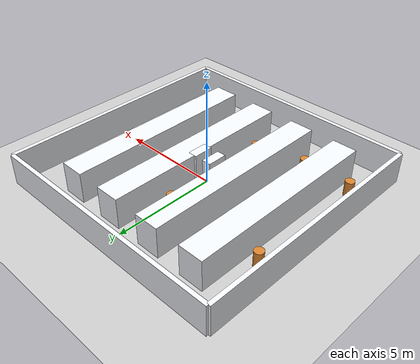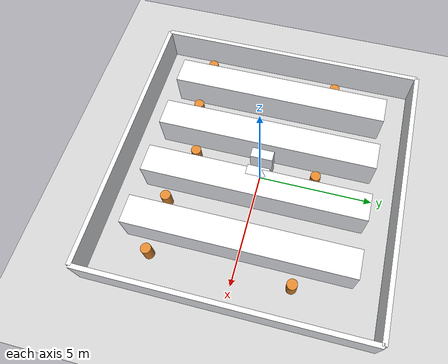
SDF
<?xml version="1.0" ?>
<sdf version="1.6">
<world name="warehouse_aisles">
  <!-- Gazebo ROS State Plugin - provides /set_entity_state service -->
  <plugin name='gazebo_ros_state' filename='libgazebo_ros_state.so'>
    <ros>
      <argument>model_states:=model_states_demo</argument>
    </ros>
    <update_rate>1.0</update_rate>
  </plugin>

  <include>
    <uri>model://ground_plane</uri>
  </include>
  <light name="studio_sun" type="directional">
    <cast_shadows>1</cast_shadows>
    <pose>0 0 18 0 -0.35 0.2</pose>
    <diffuse>0.96 0.94 0.90 1</diffuse>
    <specular>0.16 0.16 0.16 1</specular>
    <attenuation>
      <range>1000</range>
      <constant>0.82</constant>
      <linear>0.006</linear>
      <quadratic>0.0008</quadratic>
    </attenuation>
    <direction>-0.35 0.18 -0.92</direction>
  </light>
  <light name="fill_light" type="point">
    <pose>0 0 8 0 0 0</pose>
    <diffuse>0.40 0.45 0.50 1</diffuse>
    <specular>0.03 0.03 0.03 1</specular>
    <attenuation>
      <range>28</range>
      <constant>0.72</constant>
      <linear>0.02</linear>
      <quadratic>0.001</quadratic>
    </attenuation>
  </light>
  <scene>
    <ambient>0.56 0.58 0.62 1</ambient>
    <background>0.90 0.93 0.98 1</background>
    <shadows>1</shadows>
  </scene>

  <model name="b_north">
    <static>true</static>
    <pose>0 6.0 0.75 0 0 0</pose>
    <link name="link">
      <collision name="collision">
        <geometry>
          <box><size>12.0 0.2 1.5</size></box>
        </geometry>
      </collision>
      <visual name="visual">
        <geometry>
          <box><size>12.0 0.2 1.5</size></box>
        </geometry>
        <cast_shadows>true</cast_shadows>
        <material>
          <ambient>0.88 0.90 0.94 1</ambient>
          <diffuse>0.96 0.97 0.99 1</diffuse>
          <specular>0.08 0.08 0.09 1</specular>
          <emissive>0 0 0 1</emissive>
        </material>
      </visual>
    </link>
  </model>

  <model name="b_south">
    <static>true</static>
    <pose>0 -6.0 0.75 0 0 0</pose>
    <link name="link">
      <collision name="collision">
        <geometry>
          <box><size>12.0 0.2 1.5</size></box>
        </geometry>
      </collision>
      <visual name="visual">
        <geometry>
          <box><size>12.0 0.2 1.5</size></box>
        </geometry>
        <cast_shadows>true</cast_shadows>
        <material>
          <ambient>0.88 0.90 0.94 1</ambient>
          <diffuse>0.96 0.97 0.99 1</diffuse>
          <specular>0.08 0.08 0.09 1</specular>
          <emissive>0 0 0 1</emissive>
        </material>
      </visual>
    </link>
  </model>

  <model name="b_east">
    <static>true</static>
    <pose>6.0 0 0.75 0 0 0</pose>
    <link name="link">
      <collision name="collision">
        <geometry>
          <box><size>0.2 12.0 1.5</size></box>
        </geometry>
      </collision>
      <visual name="visual">
        <geometry>
          <box><size>0.2 12.0 1.5</size></box>
        </geometry>
        <cast_shadows>true</cast_shadows>
        <material>
          <ambient>0.88 0.90 0.94 1</ambient>
          <diffuse>0.96 0.97 0.99 1</diffuse>
          <specular>0.08 0.08 0.09 1</specular>
          <emissive>0 0 0 1</emissive>
        </material>
      </visual>
    </link>
  </model>

  <model name="b_west">
    <static>true</static>
    <pose>-6.0 0 0.75 0 0 0</pose>
    <link name="link">
      <collision name="collision">
        <geometry>
          <box><size>0.2 12.0 1.5</size></box>
        </geometry>
      </collision>
      <visual name="visual">
        <geometry>
          <box><size>0.2 12.0 1.5</size></box>
        </geometry>
        <cast_shadows>true</cast_shadows>
        <material>
          <ambient>0.88 0.90 0.94 1</ambient>
          <diffuse>0.96 0.97 0.99 1</diffuse>
          <specular>0.08 0.08 0.09 1</specular>
          <emissive>0 0 0 1</emissive>
        </material>
      </visual>
    </link>
  </model>

  <model name="shelf_0">
    <static>true</static>
    <pose>-3.9 0.0 0.75 0 0 0</pose>
    <link name="link">
      <collision name="collision">
        <geometry>
          <box><size>1.2 9.6 1.5</size></box>
        </geometry>
      </collision>
      <visual name="visual">
        <geometry>
          <box><size>1.2 9.6 1.5</size></box>
        </geometry>
        <cast_shadows>true</cast_shadows>
        <material>
          <ambient>0.88 0.90 0.94 1</ambient>
          <diffuse>0.96 0.97 0.99 1</diffuse>
          <specular>0.08 0.08 0.09 1</specular>
          <emissive>0 0 0 1</emissive>
        </material>
      </visual>
    </link>
  </model>

  <model name="shelf_1">
    <static>true</static>
    <pose>-1.5 0.0 0.75 0 0 0</pose>
    <link name="link">
      <collision name="collision">
        <geometry>
          <box><size>1.2 9.6 1.5</size></box>
        </geometry>
      </collision>
      <visual name="visual">
        <geometry>
          <box><size>1.2 9.6 1.5</size></box>
        </geometry>
        <cast_shadows>true</cast_shadows>
        <material>
          <ambient>0.88 0.90 0.94 1</ambient>
          <diffuse>0.96 0.97 0.99 1</diffuse>
          <specular>0.08 0.08 0.09 1</specular>
          <emissive>0 0 0 1</emissive>
        </material>
      </visual>
    </link>
  </model>

  <model name="shelf_2">
    <static>true</static>
    <pose>0.9 0.0 0.75 0 0 0</pose>
    <link name="link">
      <collision name="collision">
        <geometry>
          <box><size>1.2 9.6 1.5</size></box>
        </geometry>
      </collision>
      <visual name="visual">
        <geometry>
          <box><size>1.2 9.6 1.5</size></box>
        </geometry>
        <cast_shadows>true</cast_shadows>
        <material>
          <ambient>0.88 0.90 0.94 1</ambient>
          <diffuse>0.96 0.97 0.99 1</diffuse>
          <specular>0.08 0.08 0.09 1</specular>
          <emissive>0 0 0 1</emissive>
        </material>
      </visual>
    </link>
  </model>

  <model name="shelf_3">
    <static>true</static>
    <pose>3.3 0.0 0.75 0 0 0</pose>
    <link name="link">
      <collision name="collision">
        <geometry>
          <box><size>1.2 9.6 1.5</size></box>
        </geometry>
      </collision>
      <visual name="visual">
        <geometry>
          <box><size>1.2 9.6 1.5</size></box>
        </geometry>
        <cast_shadows>true</cast_shadows>
        <material>
          <ambient>0.88 0.90 0.94 1</ambient>
          <diffuse>0.96 0.97 0.99 1</diffuse>
          <specular>0.08 0.08 0.09 1</specular>
          <emissive>0 0 0 1</emissive>
        </material>
      </visual>
    </link>
  </model>

  <model name="choke_left">
    <static>true</static>
    <pose>-0.42 0.0 0.75 0 0 0</pose>
    <link name="link">
      <collision name="collision">
        <geometry>
          <box><size>0.44 0.96 1.5</size></box>
        </geometry>
      </collision>
      <visual name="visual">
        <geometry>
          <box><size>0.44 0.96 1.5</size></box>
        </geometry>
        <cast_shadows>true</cast_shadows>
        <material>
          <ambient>0.88 0.90 0.94 1</ambient>
          <diffuse>0.96 0.97 0.99 1</diffuse>
          <specular>0.08 0.08 0.09 1</specular>
          <emissive>0 0 0 1</emissive>
        </material>
      </visual>
    </link>
  </model>

  <model name="choke_right">
    <static>true</static>
    <pose>0.42 0.0 0.75 0 0 0</pose>
    <link name="link">
      <collision name="collision">
        <geometry>
          <box><size>0.44 0.96 1.5</size></box>
        </geometry>
      </collision>
      <visual name="visual">
        <geometry>
          <box><size>0.44 0.96 1.5</size></box>
        </geometry>
        <cast_shadows>true</cast_shadows>
        <material>
          <ambient>0.88 0.90 0.94 1</ambient>
          <diffuse>0.96 0.97 0.99 1</diffuse>
          <specular>0.08 0.08 0.09 1</specular>
          <emissive>0 0 0 1</emissive>
        </material>
      </visual>
    </link>
  </model>

  <model name="dyn_obs_0">
    <static>true</static>
    <pose>-5.1 -3.6 0.4 0 0 0</pose>
    <link name="link">
      <collision name="collision"><geometry><cylinder><radius>0.22</radius><length>0.8</length></cylinder></geometry></collision>
      <visual name="visual"><geometry><cylinder><radius>0.22</radius><length>0.8</length></cylinder></geometry>
        <cast_shadows>true</cast_shadows>
        <material><ambient>0.52 0.30 0.10 1</ambient><diffuse>0.86 0.52 0.18 1</diffuse><specular>0.08 0.06 0.04 1</specular><emissive>0 0 0 1</emissive></material></visual>
    </link>
  </model>
  <model name="dyn_obs_1">
    <static>true</static>
    <pose>-5.1 2.4 0.4 0 0 0</pose>
    <link name="link">
      <collision name="collision"><geometry><cylinder><radius>0.22</radius><length>0.8</length></cylinder></geometry></collision>
      <visual name="visual"><geometry><cylinder><radius>0.22</radius><length>0.8</length></cylinder></geometry>
        <cast_shadows>true</cast_shadows>
        <material><ambient>0.52 0.30 0.10 1</ambient><diffuse>0.86 0.52 0.18 1</diffuse><specular>0.08 0.06 0.04 1</specular><emissive>0 0 0 1</emissive></material></visual>
    </link>
  </model>
  <model name="dyn_obs_2">
    <static>true</static>
    <pose>-2.7 -3.6 0.4 0 0 0</pose>
    <link name="link">
      <collision name="collision"><geometry><cylinder><radius>0.22</radius><length>0.8</length></cylinder></geometry></collision>
      <visual name="visual"><geometry><cylinder><radius>0.22</radius><length>0.8</length></cylinder></geometry>
        <cast_shadows>true</cast_shadows>
        <material><ambient>0.52 0.30 0.10 1</ambient><diffuse>0.86 0.52 0.18 1</diffuse><specular>0.08 0.06 0.04 1</specular><emissive>0 0 0 1</emissive></material></visual>
    </link>
  </model>
  <model name="dyn_obs_3">
    <static>true</static>
    <pose>-0.3 -3.0 0.4 0 0 0</pose>
    <link name="link">
      <collision name="collision"><geometry><cylinder><radius>0.22</radius><length>0.8</length></cylinder></geometry></collision>
      <visual name="visual"><geometry><cylinder><radius>0.22</radius><length>0.8</length></cylinder></geometry>
        <cast_shadows>true</cast_shadows>
        <material><ambient>0.52 0.30 0.10 1</ambient><diffuse>0.86 0.52 0.18 1</diffuse><specular>0.08 0.06 0.04 1</specular><emissive>0 0 0 1</emissive></material></visual>
    </link>
  </model>
  <model name="dyn_obs_4">
    <static>true</static>
    <pose>-0.3 2.4 0.4 0 0 0</pose>
    <link name="link">
      <collision name="collision"><geometry><cylinder><radius>0.22</radius><length>0.8</length></cylinder></geometry></collision>
      <visual name="visual"><geometry><cylinder><radius>0.22</radius><length>0.8</length></cylinder></geometry>
        <cast_shadows>true</cast_shadows>
        <material><ambient>0.52 0.30 0.10 1</ambient><diffuse>0.86 0.52 0.18 1</diffuse><specular>0.08 0.06 0.04 1</specular><emissive>0 0 0 1</emissive></material></visual>
    </link>
  </model>
  <model name="dyn_obs_5">
    <static>true</static>
    <pose>2.1 -3.6 0.4 0 0 0</pose>
    <link name="link">
      <collision name="collision"><geometry><cylinder><radius>0.22</radius><length>0.8</length></cylinder></geometry></collision>
      <visual name="visual"><geometry><cylinder><radius>0.22</radius><length>0.8</length></cylinder></geometry>
        <cast_shadows>true</cast_shadows>
        <material><ambient>0.52 0.30 0.10 1</ambient><diffuse>0.86 0.52 0.18 1</diffuse><specular>0.08 0.06 0.04 1</specular><emissive>0 0 0 1</emissive></material></visual>
    </link>
  </model>
  <model name="dyn_obs_6">
    <static>true</static>
    <pose>4.5 -3.6 0.4 0 0 0</pose>
    <link name="link">
      <collision name="collision"><geometry><cylinder><radius>0.22</radius><length>0.8</length></cylinder></geometry></collision>
      <visual name="visual"><geometry><cylinder><radius>0.22</radius><length>0.8</length></cylinder></geometry>
        <cast_shadows>true</cast_shadows>
        <material><ambient>0.52 0.30 0.10 1</ambient><diffuse>0.86 0.52 0.18 1</diffuse><specular>0.08 0.06 0.04 1</specular><emissive>0 0 0 1</emissive></material></visual>
    </link>
  </model>
  <model name="dyn_obs_7">
    <static>true</static>
    <pose>4.5 2.4 0.4 0 0 0</pose>
    <link name="link">
      <collision name="collision"><geometry><cylinder><radius>0.22</radius><length>0.8</length></cylinder></geometry></collision>
      <visual name="visual"><geometry><cylinder><radius>0.22</radius><length>0.8</length></cylinder></geometry>
        <cast_shadows>true</cast_shadows>
        <material><ambient>0.52 0.30 0.10 1</ambient><diffuse>0.86 0.52 0.18 1</diffuse><specular>0.08 0.06 0.04 1</specular><emissive>0 0 0 1</emissive></material></visual>
    </link>
  </model>
</world>
</sdf>
